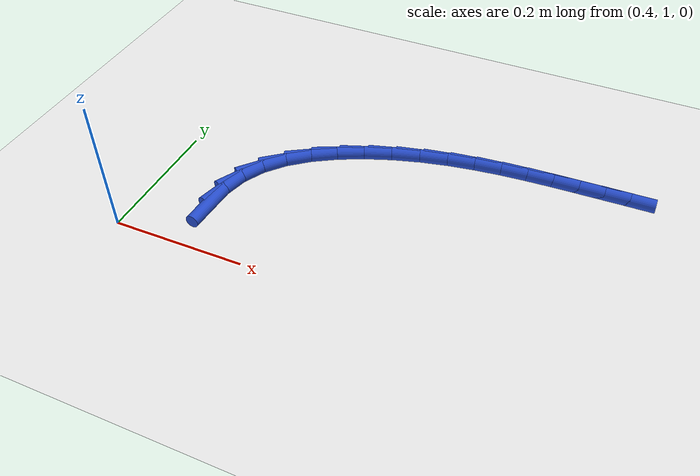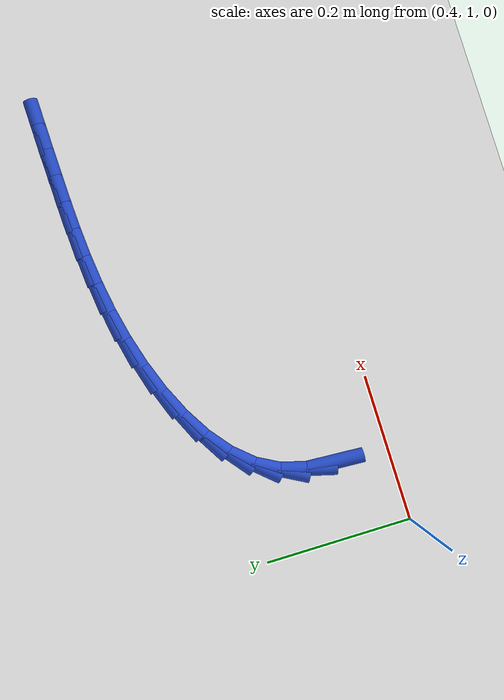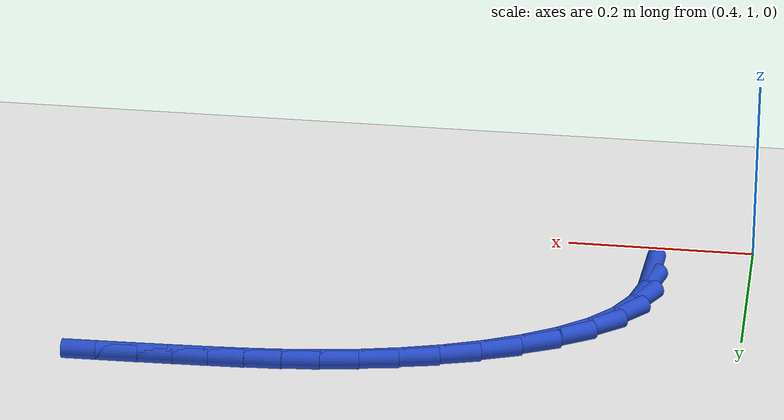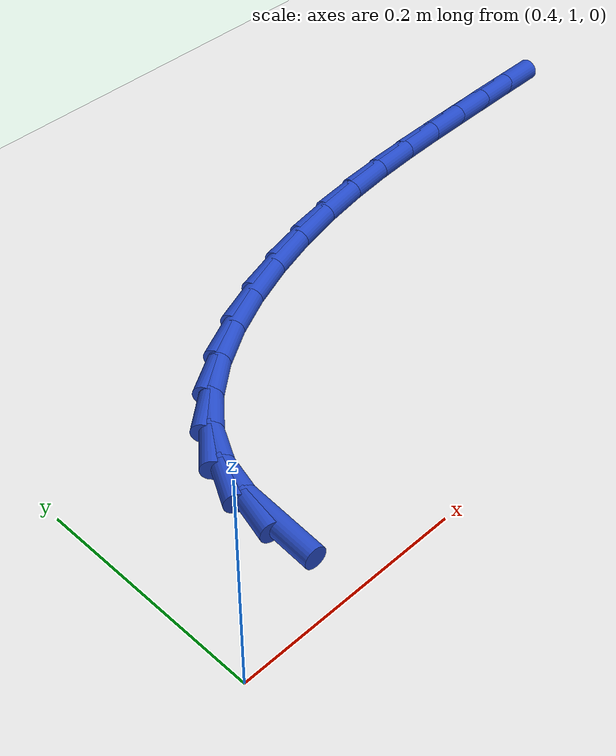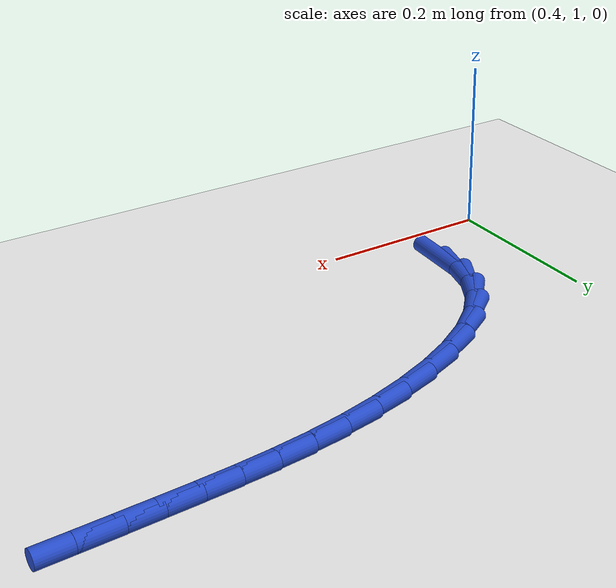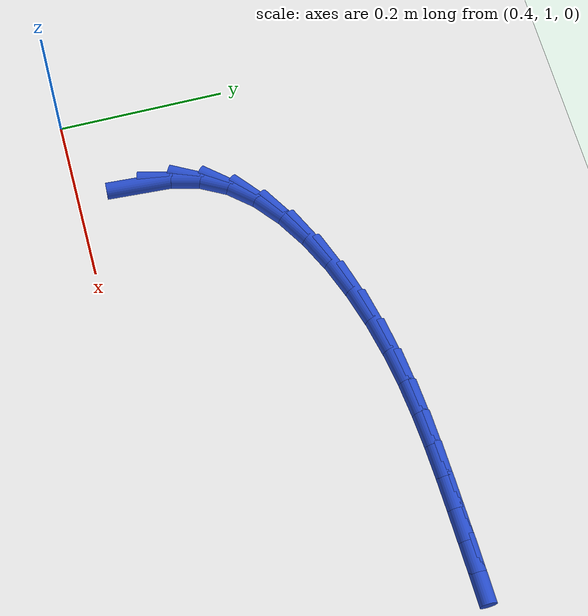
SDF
<sdf version="1.6">
 <world name="default">
  <model name="ground_plane">
   <static>1</static>
   <link name="link">
    <collision name="collision">
     <geometry><plane><normal>0 0 1</normal><size>100 100</size></plane></geometry>
     <surface><friction><ode><mu>100</mu><mu2>50</mu2></ode></friction></surface>
    </collision>
    <visual name="visual">
     <cast_shadows>0</cast_shadows>
     <geometry><plane><normal>0 0 1</normal><size>100 100</size></plane></geometry>
     <material>
      <script><uri>file://media/materials/scripts/gazebo.material</uri><name>Gazebo/WhiteGlow</name></script>
     </material>
    </visual>
   </link>
  </model>
  <model name="line">
   <link name="link_36">
    <pose>0.5040038794786816 1.0752436041920332 0.01 0 1.57 1.5122344618841372</pose>
    <collision name="collision">
     <geometry><cylinder><radius>0.01</radius><length>0.08</length></cylinder></geometry>
    </collision>
    <visual name="visual">
     <material>
      <script><name>Gazebo/Blue</name><uri>file://media/materials/scripts/gazebo.material</uri></script>
     </material>
     <geometry><cylinder><radius>0.01</radius><length>0.08</length></cylinder></geometry>
    </visual>
   </link>
   <link name="link_37">
    <pose>0.506185334301267 1.1124514440538165 0.01 0 1.57 1.3114944554749692</pose>
    <collision name="collision">
     <geometry><cylinder><radius>0.01</radius><length>0.08</length></cylinder></geometry>
    </collision>
    <visual name="visual">
     <material>
      <script><name>Gazebo/Blue</name><uri>file://media/materials/scripts/gazebo.material</uri></script>
     </material>
     <geometry><cylinder><radius>0.01</radius><length>0.08</length></cylinder></geometry>
    </visual>
   </link>
   <link name="link_38">
    <pose>0.5153271635736028 1.146913261678948 0.01 0 1.57 1.0700592484595162</pose>
    <collision name="collision">
     <geometry><cylinder><radius>0.01</radius><length>0.08</length></cylinder></geometry>
    </collision>
    <visual name="visual">
     <material>
      <script><name>Gazebo/Blue</name><uri>file://media/materials/scripts/gazebo.material</uri></script>
     </material>
     <geometry><cylinder><radius>0.01</radius><length>0.08</length></cylinder></geometry>
    </visual>
   </link>
   <link name="link_39">
    <pose>0.5324222235210633 1.1781508125017197 0.01 0 1.57 0.8473275931144263</pose>
    <collision name="collision">
     <geometry><cylinder><radius>0.01</radius><length>0.08</length></cylinder></geometry>
    </collision>
    <visual name="visual">
     <material>
      <script><name>Gazebo/Blue</name><uri>file://media/materials/scripts/gazebo.material</uri></script>
     </material>
     <geometry><cylinder><radius>0.01</radius><length>0.08</length></cylinder></geometry>
    </visual>
   </link>
   <link name="link_40">
    <pose>0.5570259686857548 1.2060075662131464 0.01 0 1.57 0.6737259484942114</pose>
    <collision name="collision">
     <geometry><cylinder><radius>0.01</radius><length>0.08</length></cylinder></geometry>
    </collision>
    <visual name="visual">
     <material>
      <script><name>Gazebo/Blue</name><uri>file://media/materials/scripts/gazebo.material</uri></script>
     </material>
     <geometry><cylinder><radius>0.01</radius><length>0.08</length></cylinder></geometry>
    </visual>
   </link>
   <link name="link_41">
    <pose>0.5877524973840397 1.2305376835880188 0.01 0 1.57 0.5402752953222988</pose>
    <collision name="collision">
     <geometry><cylinder><radius>0.01</radius><length>0.08</length></cylinder></geometry>
    </collision>
    <visual name="visual">
     <material>
      <script><name>Gazebo/Blue</name><uri>file://media/materials/scripts/gazebo.material</uri></script>
     </material>
     <geometry><cylinder><radius>0.01</radius><length>0.08</length></cylinder></geometry>
    </visual>
   </link>
   <link name="link_42">
    <pose>0.6231995774989652 1.2517989804220448 0.01 0 1.57 0.43577467851882024</pose>
    <collision name="collision">
     <geometry><cylinder><radius>0.01</radius><length>0.08</length></cylinder></geometry>
    </collision>
    <visual name="visual">
     <material>
      <script><name>Gazebo/Blue</name><uri>file://media/materials/scripts/gazebo.material</uri></script>
     </material>
     <geometry><cylinder><radius>0.01</radius><length>0.08</length></cylinder></geometry>
    </visual>
   </link>
   <link name="link_43">
    <pose>0.661964976913579 1.2698492725109305 0.01 0 1.57 0.35102345976377064</pose>
    <collision name="collision">
     <geometry><cylinder><radius>0.01</radius><length>0.08</length></cylinder></geometry>
    </collision>
    <visual name="visual">
     <material>
      <script><name>Gazebo/Blue</name><uri>file://media/materials/scripts/gazebo.material</uri></script>
     </material>
     <geometry><cylinder><radius>0.01</radius><length>0.08</length></cylinder></geometry>
    </visual>
   </link>
   <link name="link_44">
    <pose>0.702646463510929 1.2847463756503834 0.01 0 1.57 0.2790111882744085</pose>
    <collision name="collision">
     <geometry><cylinder><radius>0.01</radius><length>0.08</length></cylinder></geometry>
    </collision>
    <visual name="visual">
     <material>
      <script><name>Gazebo/Blue</name><uri>file://media/materials/scripts/gazebo.material</uri></script>
     </material>
     <geometry><cylinder><radius>0.01</radius><length>0.08</length></cylinder></geometry>
    </visual>
   </link>
   <link name="link_45">
    <pose>0.7438486055359255 1.2965501323981472 0.01 0 1.57 0.21504136879132027</pose>
    <collision name="collision">
     <geometry><cylinder><radius>0.01</radius><length>0.08</length></cylinder></geometry>
    </collision>
    <visual name="visual">
     <material>
      <script><name>Gazebo/Blue</name><uri>file://media/materials/scripts/gazebo.material</uri></script>
     </material>
     <geometry><cylinder><radius>0.01</radius><length>0.08</length></cylinder></geometry>
    </visual>
   </link>
   <link name="link_46">
    <pose>0.7846531452208726 1.3054626009972259 0.01 0 1.57 0.158971176484876</pose>
    <collision name="collision">
     <geometry><cylinder><radius>0.01</radius><length>0.08</length></cylinder></geometry>
    </collision>
    <visual name="visual">
     <material>
      <script><name>Gazebo/Blue</name><uri>file://media/materials/scripts/gazebo.material</uri></script>
     </material>
     <geometry><cylinder><radius>0.01</radius><length>0.08</length></cylinder></geometry>
    </visual>
   </link>
   <link name="link_47">
    <pose>0.8249242113704589 1.3119190201352249 0.01 0 1.57 0.11187657022212875</pose>
    <collision name="collision">
     <geometry><cylinder><radius>0.01</radius><length>0.08</length></cylinder></geometry>
    </collision>
    <visual name="visual">
     <material>
      <script><name>Gazebo/Blue</name><uri>file://media/materials/scripts/gazebo.material</uri></script>
     </material>
     <geometry><cylinder><radius>0.01</radius><length>0.08</length></cylinder></geometry>
    </visual>
   </link>
   <link name="link_48">
    <pose>0.8645984940612368 1.3163762544711408 0.01 0 1.57 0.07457564666549331</pose>
    <collision name="collision">
     <geometry><cylinder><radius>0.01</radius><length>0.08</length></cylinder></geometry>
    </collision>
    <visual name="visual">
     <material>
      <script><name>Gazebo/Blue</name><uri>file://media/materials/scripts/gazebo.material</uri></script>
     </material>
     <geometry><cylinder><radius>0.01</radius><length>0.08</length></cylinder></geometry>
    </visual>
   </link>
   <link name="link_49">
    <pose>0.9036126833697584 1.3192911686639732 0.01 0 1.57 0.04774173483753255</pose>
    <collision name="collision">
     <geometry><cylinder><radius>0.01</radius><length>0.08</length></cylinder></geometry>
    </collision>
    <visual name="visual">
     <material>
      <script><name>Gazebo/Blue</name><uri>file://media/materials/scripts/gazebo.material</uri></script>
     </material>
     <geometry><cylinder><radius>0.01</radius><length>0.08</length></cylinder></geometry>
    </visual>
   </link>
   <link name="link_50">
    <pose>0.941903469372576 1.32112062737272 0.01 0 1.57 0.03200872990443709</pose>
    <collision name="collision">
     <geometry><cylinder><radius>0.01</radius><length>0.08</length></cylinder></geometry>
    </collision>
    <visual name="visual">
     <material>
      <script><name>Gazebo/Blue</name><uri>file://media/materials/scripts/gazebo.material</uri></script>
     </material>
     <geometry><cylinder><radius>0.01</radius><length>0.08</length></cylinder></geometry>
    </visual>
   </link>
   <link name="link_51">
    <pose>0.9794075421462419 1.3223214952563795 0.01 0 1.57 0.02745105983898128</pose>
    <collision name="collision">
     <geometry><cylinder><radius>0.01</radius><length>0.08</length></cylinder></geometry>
    </collision>
    <visual name="visual">
     <material>
      <script><name>Gazebo/Blue</name><uri>file://media/materials/scripts/gazebo.material</uri></script>
     </material>
     <geometry><cylinder><radius>0.01</radius><length>0.08</length></cylinder></geometry>
    </visual>
   </link>
   <link name="link_52">
    <pose>1.0160799750475469 1.3233284453517702 0.01 0 1.57 0.0255893068580838</pose>
    <collision name="collision">
     <geometry><cylinder><radius>0.01</radius><length>0.08</length></cylinder></geometry>
    </collision>
    <visual name="visual">
     <material>
      <script><name>Gazebo/Blue</name><uri>file://media/materials/scripts/gazebo.material</uri></script>
     </material>
     <geometry><cylinder><radius>0.01</radius><length>0.08</length></cylinder></geometry>
    </visual>
   </link>
   <link name="link_53">
    <pose>1.0521447619207036 1.324251519738889 0.01 0 1.57 0.019590090633233595</pose>
    <collision name="collision">
     <geometry><cylinder><radius>0.01</radius><length>0.08</length></cylinder></geometry>
    </collision>
    <visual name="visual">
     <material>
      <script><name>Gazebo/Blue</name><uri>file://media/materials/scripts/gazebo.material</uri></script>
     </material>
     <geometry><cylinder><radius>0.01</radius><length>0.08</length></cylinder></geometry>
    </visual>
   </link>
  </model>
 </world>
</sdf>
